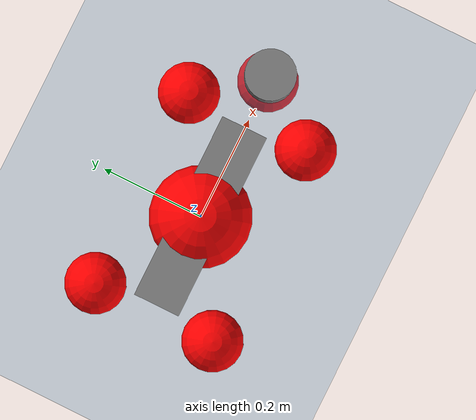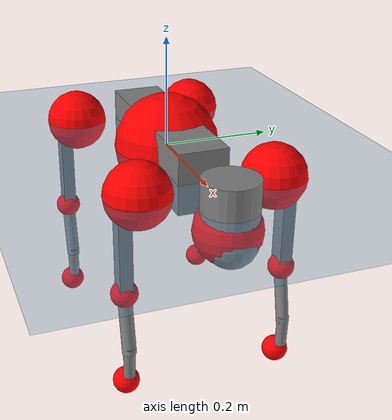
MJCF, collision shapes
<mujoco model="go2">
  <compiler angle="radian" assetdir="assets" balanceinertia="true" inertiafromgeom="false"/>

  <option timestep="0.005" density="1.2" viscosity="2e-05"/>

  <size nkey="1"/>

  <visual>
    <quality shadowsize="8192"/>
    <map shadowclip="0.5"/>
  </visual>

  <default>
    <default class="/">
      <geom contype="0" conaffinity="0" group="1" solref="-1000 -80"/>
      <site size="0.01 0.005 0.005" group="5"/>
      <general forcelimited="true" biastype="affine" gainprm="20" biasprm="0 -20 -0.5"/>
      <default class="go2">
        <joint armature="0.01" damping="0.01" frictionloss="0.2"/>
        <geom condim="1" margin="0.001"/>
        <default class="visual">
          <geom type="mesh" group="2"/>
        </default>
        <default class="collision">
          <geom group="3"/>
          <default class="foot">
            <geom size="0.022 0 0" condim="6" priority="1" friction="0.8 0.02 0.01" solimp="0.015 1 0.022"/>
          </default>
        </default>
        <default class="reward_collision_sphere">
          <geom group="5" rgba="1 0 0 1"/>
        </default>
      </default>
    </default>
  </default>

  <asset>
    <texture type="skybox" colorspace="auto" name="//unnamed_texture_0" builtin="gradient" rgb1="0.95 0.95 0.95" rgb2="0.95 0.95 0.95" width="100" height="600"/>
    <texture type="2d" colorspace="auto" name="texplane" builtin="checker" rgb1="0.345 0.575 0.748" rgb2="0.345 0.575 0.748" markrgb="1 1 1" width="512" height="512"/>
    <material name="MatPlane" class="/" texture="texplane" texuniform="true" texrepeat="2 2" specular="0.9"/>
    <material name="metal" class="/" rgba="0.9 0.95 0.95 1"/>
    <material name="black" class="/" rgba="0 0 0 1"/>
    <material name="white" class="/"/>
    <material name="gray" class="/" rgba="0.671705 0.692426 0.77427 1"/>
    <mesh name="base_0" class="/" file="base_0.obj"/>
    <mesh name="base_1" class="/" file="base_1.obj"/>
    <mesh name="base_2" class="/" file="base_2.obj"/>
    <mesh name="base_3" class="/" file="base_3.obj"/>
    <mesh name="base_4" class="/" file="base_4.obj"/>
    <mesh name="hip_0" class="/" file="hip_0.obj"/>
    <mesh name="hip_1" class="/" file="hip_1.obj"/>
    <mesh name="thigh_0" class="/" file="thigh_0.obj"/>
    <mesh name="thigh_1" class="/" file="thigh_1.obj"/>
    <mesh name="thigh_mirror_0" class="/" file="thigh_mirror_0.obj"/>
    <mesh name="thigh_mirror_1" class="/" file="thigh_mirror_1.obj"/>
    <mesh name="calf_0" class="/" file="calf_0.obj"/>
    <mesh name="calf_1" class="/" file="calf_1.obj"/>
    <mesh name="calf_mirror_0" class="/" file="calf_mirror_0.obj"/>
    <mesh name="calf_mirror_1" class="/" file="calf_mirror_1.obj"/>
    <mesh name="foot" class="/" file="foot.obj"/>
  </asset>

  <worldbody>
    <geom name="floor" class="/" size="100 100 0.125" type="plane" group="0" material="MatPlane"/>
    <light name="toplight_shadow" class="/" pos="0 0 5" dir="0.0990148 0.0990148 -0.990148" type="directional" ambient="0.04 0.04 0.04" diffuse="0.55 0.55 0.55" specular="0.12 0.12 0.12"/>
    <light name="toplight_fill" class="/" pos="0 0 5" dir="0.0990148 0.0990148 -0.990148" type="directional" castshadow="false" ambient="0.04 0.04 0.04" diffuse="0.3 0.3 0.3" specular="0.08 0.08 0.08"/>
    <body name="trunk" childclass="go2" pos="-2.3164e-05 0.00086684 -0.000136057" quat="1 -0.000257947 9.16713e-05 0.000234616">
      <inertial pos="0.020948 0.000149792 -0.00482008" quat="-0.00086665 0.713103 -0.00105442 0.701058" mass="6.25698" diaginertia="0.114913 0.114064 0.0107592"/>
      <joint name="//unnamed_joint_0" type="free" armature="0" damping="0" frictionloss="0"/>
      <geom name="//unnamed_geom_1" class="visual" material="black" mesh="base_0"/>
      <geom name="//unnamed_geom_2" class="visual" material="black" mesh="base_1"/>
      <geom name="//unnamed_geom_3" class="visual" material="black" mesh="base_2"/>
      <geom name="//unnamed_geom_4" class="visual" material="white" mesh="base_3"/>
      <geom name="//unnamed_geom_5" class="visual" material="gray" mesh="base_4"/>
      <geom name="trunk_1" class="collision" size="0.181708 0.0451614 0.0550631" type="box"/>
      <geom name="trunk_2" class="collision" size="0.0483009 0.0434708" pos="0.289584 0 0.00850021" type="cylinder"/>
      <geom name="trunk_3" class="collision" size="0.0454029" pos="0.297713 0 -0.0510013"/>
      <geom name="//unnamed_geom_9" class="reward_collision_sphere" size="0.0966018"/>
      <geom name="//unnamed_geom_10" class="reward_collision_sphere" size="0.0579611" pos="0.284504 0 -0.0382509"/>
      <site name="imu" pos="-0.0250191 0.00129869 0.0335704" size="0.00966018"/>
      <camera name="track" pos="0 -2.0639 0" quat="0.707107 0.707107 0 0" mode="trackcom"/>
      <camera name="ego_camera" pos="0.317018 0 0.0382509" quat="-0.5 -0.5 0.5 0.5"/>
      <body name="FL_hip" pos="0.19681 0.0492939 0.000162895" quat="1 7.13994e-05 -3.47673e-06 -3.34725e-05">
        <inertial pos="-0.00565543 0.00248051 0.000448464" quat="0.497084 0.4995 0.505206 0.498171" mass="0.608733" diaginertia="0.000951271 0.000694807 0.000210184"/>
        <joint name="FL_hip_joint" pos="0 0 0" axis="0.999998 0.000517742 -0.0020617" range="-1.04689 1.05824" armature="0.00926489" damping="0.00900863" frictionloss="0.193201"/>
        <geom name="//unnamed_geom_11" class="visual" material="metal" mesh="hip_0"/>
        <geom name="//unnamed_geom_12" class="visual" material="gray" mesh="hip_1"/>
        <geom name="//unnamed_geom_13" class="collision" size="0.0444368 0.0193204" pos="0 0.082556 0" quat="0.707107 0.707107 0 0" type="cylinder"/>
        <geom name="//unnamed_geom_14" class="reward_collision_sphere" size="0.0579611" pos="0 0.0722365 0"/>
        <body name="FL_thigh" pos="-0.000468263 0.0987757 0.00012279" quat="1 2.57008e-05 -5.53412e-05 7.76665e-05">
          <inertial pos="-0.00405259 -0.0230859 -0.0280532" quat="0.829007 0.0845303 -0.0197343 0.55246" mass="1.03056" diaginertia="0.00645605 0.00686458 0.000388436"/>
          <joint name="FL_thigh_joint" pos="0 0 0" axis="-0.00127689 0.999999 -0.000520052" stiffness="0.00767561" range="-1.55552 3.47872" armature="0.0092553" damping="0.00511455" frictionloss="0.189733"/>
          <geom name="//unnamed_geom_15" class="visual" material="metal" mesh="thigh_0"/>
          <geom name="//unnamed_geom_16" class="visual" material="gray" mesh="thigh_1"/>
          <geom name="//unnamed_geom_17" class="collision" size="0.102881 0.0118337 0.0164223" pos="0 0 -0.0905272" quat="0.707107 0 0.707107 0" type="box"/>
          <body name="FL_calf" pos="-0.000478473 -6.50796e-05 -0.180383" quat="1 0.000303041 -0.000112216 0.000195419">
            <inertial pos="0.00579258 -0.00123507 -0.118822" quat="0.71119 0.000835916 -0.00652772 0.702969" mass="0.218807" diaginertia="0.00160539 0.00170335 2.38232e-05"/>
            <joint name="FL_calf_joint" pos="0 0 0" axis="0.00110706 0.999983 -0.00579206" stiffness="0.00114237" range="-2.71895 -0.82265" armature="0.00996752" damping="0.00430178" frictionloss="0.194496"/>
            <geom name="//unnamed_geom_18" class="visual" material="gray" mesh="calf_0"/>
            <geom name="//unnamed_geom_19" class="visual" material="black" mesh="calf_1"/>
            <geom name="FL_calf0" class="collision" size="0.0115922 0.0579611" pos="0.00812867 0 -0.0510013" quat="0.994493 0 -0.104807 0" type="cylinder"/>
            <geom name="//unnamed_geom_21" class="collision" size="0.0106262 0.0313956" pos="0.0203217 0 -0.125803" quat="0.999688 0 0.0249974 0" type="cylinder"/>
            <geom name="//unnamed_geom_22" class="visual" pos="0 0 -0.181054" quat="1 0 0 0" material="black" mesh="foot"/>
            <geom name="FL_foot" class="foot" size="0.0168223" pos="-0.00203217 0 -0.181054"/>
            <geom name="//unnamed_geom_24" class="reward_collision_sphere" size="0.0241505"/>
            <geom name="//unnamed_geom_25" class="reward_collision_sphere" size="0.0241505" pos="-0.00203217 0 -0.181054"/>
            <site name="FL_foot" class="foot" pos="-0.00203217 0 -0.181054" size="0.00966018"/>
          </body>
        </body>
      </body>
      <body name="FR_hip" pos="0.197142 -0.0475935 0.0018445" quat="1 -1.24947e-05 -0.000132324 -0.000163868">
        <inertial pos="-0.0059141 -0.00145218 -0.000330821" quat="0.498267 0.505464 0.499214 0.497013" mass="0.610168" diaginertia="0.00094741 0.000686824 0.000212797"/>
        <joint name="FR_hip_joint" pos="0 0 0" axis="1 -0.000698844 0.000362276" stiffness="0.00715225" range="-1.06331 1.04986" armature="0.00958741" damping="0.0151732" frictionloss="0.194174"/>
        <geom name="//unnamed_geom_26" class="visual" pos="0 1.58489e-09 6.79793e-08" quat="4.63268e-05 1 0 0" material="metal" mesh="hip_0"/>
        <geom name="//unnamed_geom_27" class="visual" pos="0 2.5693e-09 -1.68139e-07" quat="4.63268e-05 1 0 0" material="gray" mesh="hip_1"/>
        <geom name="//unnamed_geom_28" class="collision" size="0.0444368 0.0193204" pos="0 -0.082556 0" quat="0.707107 0.707107 0 0" type="cylinder"/>
        <geom name="//unnamed_geom_29" class="reward_collision_sphere" size="0.0579611" pos="0 -0.0722365 0"/>
        <body name="FR_thigh" pos="0.000205727 -0.0987599 0.000982952" quat="1 0.000106908 3.31494e-05 0.000164597">
          <inertial pos="-0.00292296 0.0228434 -0.028084" quat="0.551371 -0.0199039 0.0853481 0.829644" mass="1.03006" diaginertia="0.00641487 0.00682102 0.000392291"/>
          <joint name="FR_thigh_joint" pos="0 0 0" axis="0.000528348 -0.999998 -0.00205933" stiffness="0.00119164" range="-3.50133 1.56838" armature="0.00963914" damping="0.0113083" frictionloss="0.192959"/>
          <geom name="//unnamed_geom_30" class="visual" material="metal" mesh="thigh_mirror_0"/>
          <geom name="//unnamed_geom_31" class="visual" material="gray" mesh="thigh_mirror_1"/>
          <geom name="//unnamed_geom_32" class="collision" size="0.102881 0.0118337 0.0164223" pos="0 0 -0.0905272" quat="0.707107 0 0.707107 0" type="box"/>
          <body name="FR_calf" pos="-0.00151897 0.000443896 -0.180288" quat="1 -2.31687e-05 1.26179e-05 4.36715e-05">
            <inertial pos="0.00590437 0.000611802 -0.120832" quat="0.703111 -0.00439272 0.00173791 0.711064" mass="0.217017" diaginertia="0.00158855 0.00171654 2.33885e-05"/>
            <joint name="FR_calf_joint" pos="0 0 0" axis="0.000740999 -0.999994 -0.0034797" stiffness="0.00180266" range="0.837151 2.7265" armature="0.00958568" damping="0.00357329" frictionloss="0.197763"/>
            <geom name="//unnamed_geom_33" class="visual" material="gray" mesh="calf_mirror_0"/>
            <geom name="//unnamed_geom_34" class="visual" material="black" mesh="calf_mirror_1"/>
            <geom name="FR_calf0" class="collision" size="0.0125582 0.0579611" pos="0.0101608 0 -0.0510013" quat="0.995004 0 -0.0998334 0" type="cylinder"/>
            <geom name="//unnamed_geom_36" class="collision" size="0.0106262 0.0313956" pos="0.0203217 0 -0.125803" quat="0.999688 0 0.0249974 0" type="cylinder"/>
            <geom name="//unnamed_geom_37" class="visual" pos="0 0 -0.181054" quat="1 0 0 0" material="black" mesh="foot"/>
            <geom name="FR_foot" class="foot" size="0.0212815" pos="-0.00203217 0 -0.181054"/>
            <geom name="//unnamed_geom_39" class="reward_collision_sphere" size="0.0241505"/>
            <geom name="//unnamed_geom_40" class="reward_collision_sphere" size="0.0241505" pos="-0.00203217 0 -0.181054"/>
            <site name="FR_foot" class="foot" pos="-0.00203217 0 -0.181054" size="0.00966018"/>
          </body>
        </body>
      </body>
      <body name="RL_hip" pos="-0.19635 0.0477587 -0.00157049" quat="1 -4.6151e-05 0.000145312 0.000487942">
        <inertial pos="0.00517539 0.00256643 3.81582e-07" quat="0.505425 0.498336 0.496899 0.499298" mass="0.614041" diaginertia="0.000957113 0.000689821 0.000211665"/>
        <joint name="RL_hip_joint" pos="0 0 0" axis="-0.999808 -0.0163166 -0.0108749" range="-1.05361 1.04341" armature="0.00963024" damping="0.0192068" frictionloss="0.194963"/>
        <geom name="//unnamed_geom_41" class="visual" pos="-1.44667e-09 0 -2.83582e-07" quat="4.63268e-05 0 1 0" material="metal" mesh="hip_0"/>
        <geom name="//unnamed_geom_42" class="visual" pos="-2.34523e-09 0 -2.51496e-07" quat="4.63268e-05 0 1 0" material="gray" mesh="hip_1"/>
        <geom name="//unnamed_geom_43" class="collision" size="0.0444368 0.0193204" pos="0 0.082556 0" quat="0.707107 0.707107 0 0" type="cylinder"/>
        <geom name="//unnamed_geom_44" class="reward_collision_sphere" size="0.0579611" pos="0 0.0722365 0"/>
        <body name="RL_thigh" pos="-0.000246752 0.0975324 -0.00132831" quat="1 3.51803e-06 1.90701e-06 -2.12499e-06">
          <inertial pos="-0.0037879 -0.022843 -0.0278973" quat="0.828775 0.0830778 -0.0193912 0.553041" mass="1.04646" diaginertia="0.00648061 0.00690184 0.000391698"/>
          <joint name="RL_thigh_joint" pos="0 0 0" axis="-0.000528262 1 -0.000116265" range="-0.519909 4.54582" armature="0.0100301" damping="0.00413708" frictionloss="0.190311"/>
          <geom name="//unnamed_geom_45" class="visual" material="metal" mesh="thigh_0"/>
          <geom name="//unnamed_geom_46" class="visual" material="gray" mesh="thigh_1"/>
          <geom name="//unnamed_geom_47" class="collision" size="0.102881 0.0118337 0.0164223" pos="0 0 -0.0905272" quat="0.707107 0 0.707107 0" type="box"/>
          <body name="RL_calf" pos="-0.000266604 -0.000260651 -0.182141" quat="1 -1.29917e-05 2.05583e-05 2.74509e-05">
            <inertial pos="0.00643675 -0.000628785 -0.120674" quat="0.710865 0.00176644 -0.00481222 0.70331" mass="0.216769" diaginertia="0.00161364 0.00171279 2.35745e-05"/>
            <joint name="RL_calf_joint" pos="0 0 0" axis="0.00346767 0.999956 -0.00873495" range="-2.73178 -0.836869" armature="0.00958901" damping="0.00327275" frictionloss="0.191413"/>
            <geom name="//unnamed_geom_48" class="visual" material="gray" mesh="calf_0"/>
            <geom name="//unnamed_geom_49" class="visual" material="black" mesh="calf_1"/>
            <geom name="RL_calf0" class="collision" size="0.0125582 0.0579611" pos="0.0101608 0 -0.0510013" quat="0.995004 0 -0.0998334 0" type="cylinder"/>
            <geom name="//unnamed_geom_51" class="collision" size="0.0106262 0.0313956" pos="0.0203217 0 -0.125803" quat="0.999688 0 0.0249974 0" type="cylinder"/>
            <geom name="//unnamed_geom_52" class="visual" pos="0 0 -0.181054" quat="1 0 0 0" material="black" mesh="foot"/>
            <geom name="RL_foot" class="foot" size="0.0188147" pos="-0.00203217 0 -0.181054"/>
            <geom name="//unnamed_geom_54" class="reward_collision_sphere" size="0.0241505"/>
            <geom name="//unnamed_geom_55" class="reward_collision_sphere" size="0.0241505" pos="-0.00203217 0 -0.181054"/>
            <site name="RL_foot" class="foot" pos="-0.00203217 0 -0.181054" size="0.00966018"/>
          </body>
        </body>
      </body>
      <body name="RR_hip" pos="-0.196365 -0.0497001 -0.00240692" quat="1 -2.62213e-05 0.00052087 -1.85593e-05">
        <inertial pos="0.00529381 -0.00271834 0.000167703" quat="0.500602 0.496594 0.497826 0.504936" mass="0.610311" diaginertia="0.000947162 0.000688922 0.000212243"/>
        <joint name="RR_hip_joint" pos="0 0 0" axis="-1 0.000139514 0.000506382" range="-1.04542 1.04824" armature="0.00962369" damping="0.0109679" frictionloss="0.198003"/>
        <geom name="//unnamed_geom_56" class="visual" pos="1.44722e-09 1.58489e-09 -3.51561e-07" quat="2.14617e-09 4.63268e-05 4.63268e-05 -1" material="metal" mesh="hip_0"/>
        <geom name="//unnamed_geom_57" class="visual" pos="2.34387e-09 2.5693e-09 -8.33576e-08" quat="2.14617e-09 4.63268e-05 4.63268e-05 -1" material="gray" mesh="hip_1"/>
        <geom name="//unnamed_geom_58" class="collision" size="0.0444368 0.0193204" pos="0 -0.082556 0" quat="0.707107 0.707107 0 0" type="cylinder"/>
        <geom name="//unnamed_geom_59" class="reward_collision_sphere" size="0.0579611" pos="0 -0.0722365 0"/>
        <body name="RR_thigh" pos="0.000699112 -0.0990829 -0.00141161" quat="1 1.19364e-05 3.11809e-05 1.50854e-05">
          <inertial pos="-0.00368407 0.0233126 -0.0277727" quat="0.551099 -0.0201751 0.0846312 0.829892" mass="1.03957" diaginertia="0.00642485 0.00682973 0.000390438"/>
          <joint name="RR_thigh_joint" pos="0 0 0" axis="-0.00473581 -0.99996 -0.00756265" stiffness="0.00258479" range="-4.53334 0.50846" armature="0.00940025" damping="0.0126824" frictionloss="0.188584"/>
          <geom name="//unnamed_geom_60" class="visual" material="metal" mesh="thigh_mirror_0"/>
          <geom name="//unnamed_geom_61" class="visual" material="gray" mesh="thigh_mirror_1"/>
          <geom name="//unnamed_geom_62" class="collision" size="0.102881 0.0118337 0.0164223" pos="0 0 -0.0905272" quat="0.707107 0 0.707107 0" type="box"/>
          <body name="RR_calf" pos="0.000551567 -0.00139761 -0.181844" quat="1 0.000147877 -6.15146e-05 -8.02376e-05">
            <inertial pos="0.00667205 0.000870353 -0.120884" quat="0.7036 -0.00476714 0.00216051 0.710577" mass="0.218082" diaginertia="0.00159916 0.001728 2.32876e-05"/>
            <joint name="RR_calf_joint" pos="0 0 0" axis="0.0010409 -0.999999 0.00050319" range="0.819056 2.73832" armature="0.0100878" damping="0.00777917" frictionloss="0.197817"/>
            <geom name="//unnamed_geom_63" class="visual" material="gray" mesh="calf_mirror_0"/>
            <geom name="//unnamed_geom_64" class="visual" material="black" mesh="calf_mirror_1"/>
            <geom name="RR_calf0" class="collision" size="0.0125582 0.0579611" pos="0.0101608 0 -0.0510013" quat="0.995004 0 -0.0998334 0" type="cylinder"/>
            <geom name="//unnamed_geom_66" class="collision" size="0.0106262 0.0313956" pos="0.0203217 0 -0.125803" quat="0.999688 0 0.0249974 0" type="cylinder"/>
            <geom name="//unnamed_geom_67" class="visual" pos="0 0 -0.181054" quat="1 0 0 0" material="black" mesh="foot"/>
            <geom name="RR_foot" class="foot" size="0.0232964" pos="-0.00203217 0 -0.181054"/>
            <geom name="//unnamed_geom_69" class="reward_collision_sphere" size="0.0241505"/>
            <geom name="//unnamed_geom_70" class="reward_collision_sphere" size="0.0241505" pos="-0.00203217 0 -0.181054"/>
            <site name="RR_foot" class="foot" pos="-0.00203217 0 -0.181054" size="0.00966018"/>
          </body>
        </body>
      </body>
    </body>
  </worldbody>

  <contact>
    <pair class="/" geom1="floor" geom2="FL_foot" name="//unnamed_contact_0"/>
    <pair class="/" geom1="floor" geom2="FR_foot" name="//unnamed_contact_1"/>
    <pair class="/" geom1="floor" geom2="RL_foot" name="//unnamed_contact_2"/>
    <pair class="/" geom1="floor" geom2="RR_foot" name="//unnamed_contact_3"/>
  </contact>

  <actuator>
    <general name="FL_hip" class="/" joint="FL_hip_joint" forcerange="-23.0587 23.0587" gainprm="19.3767" biasprm="0 -19.3767 -0.484907"/>
    <general name="FL_thigh" class="/" joint="FL_thigh_joint" forcerange="-23.3523 23.3523" gainprm="19.3767" biasprm="0 -19.3767 -0.484907"/>
    <general name="FL_calf" class="/" joint="FL_calf_joint" forcerange="-43.7793 43.7793" gainprm="19.3767" biasprm="0 -19.3767 -0.484907"/>
    <general name="FR_hip" class="/" joint="FR_hip_joint" forcerange="-23.1824 23.1824" gainprm="19.3767" biasprm="0 -19.3767 -0.484907"/>
    <general name="FR_thigh" class="/" joint="FR_thigh_joint" forcerange="-22.791 22.791" gainprm="19.3767" biasprm="0 -19.3767 -0.484907"/>
    <general name="FR_calf" class="/" joint="FR_calf_joint" forcerange="-45.0406 45.0406" gainprm="19.3767" biasprm="0 -19.3767 -0.484907"/>
    <general name="RL_hip" class="/" joint="RL_hip_joint" forcerange="-23.1131 23.1131" gainprm="19.3767" biasprm="0 -19.3767 -0.484907"/>
    <general name="RL_thigh" class="/" joint="RL_thigh_joint" forcerange="-23.167 23.167" gainprm="19.3767" biasprm="0 -19.3767 -0.484907"/>
    <general name="RL_calf" class="/" joint="RL_calf_joint" forcerange="-43.4345 43.4345" gainprm="19.3767" biasprm="0 -19.3767 -0.484907"/>
    <general name="RR_hip" class="/" joint="RR_hip_joint" forcerange="-22.7829 22.7829" gainprm="19.3767" biasprm="0 -19.3767 -0.484907"/>
    <general name="RR_thigh" class="/" joint="RR_thigh_joint" forcerange="-22.4978 22.4978" gainprm="19.3767" biasprm="0 -19.3767 -0.484907"/>
    <general name="RR_calf" class="/" joint="RR_calf_joint" forcerange="-43.746 43.746" gainprm="19.3767" biasprm="0 -19.3767 -0.484907"/>
  </actuator>

  <sensor>
    <gyro site="imu" name="imu_angular_velocity"/>
    <velocimeter site="imu" name="imu_linear_velocity"/>
    <framelinvel objtype="site" objname="FL_foot" name="FL_foot_global_linear_velocity"/>
    <framelinvel objtype="site" objname="FR_foot" name="FR_foot_global_linear_velocity"/>
    <framelinvel objtype="site" objname="RL_foot" name="RL_foot_global_linear_velocity"/>
    <framelinvel objtype="site" objname="RR_foot" name="RR_foot_global_linear_velocity"/>
  </sensor>

  <keyframe>
    <key name="home" qpos="0 0 0.325 1 0 0 0 0.1 0.8 -1.5 -0.1 -0.8 1.5 -0.1 0.8 -1.5 0.1 -0.8 1.5"/>
  </keyframe>
</mujoco>
